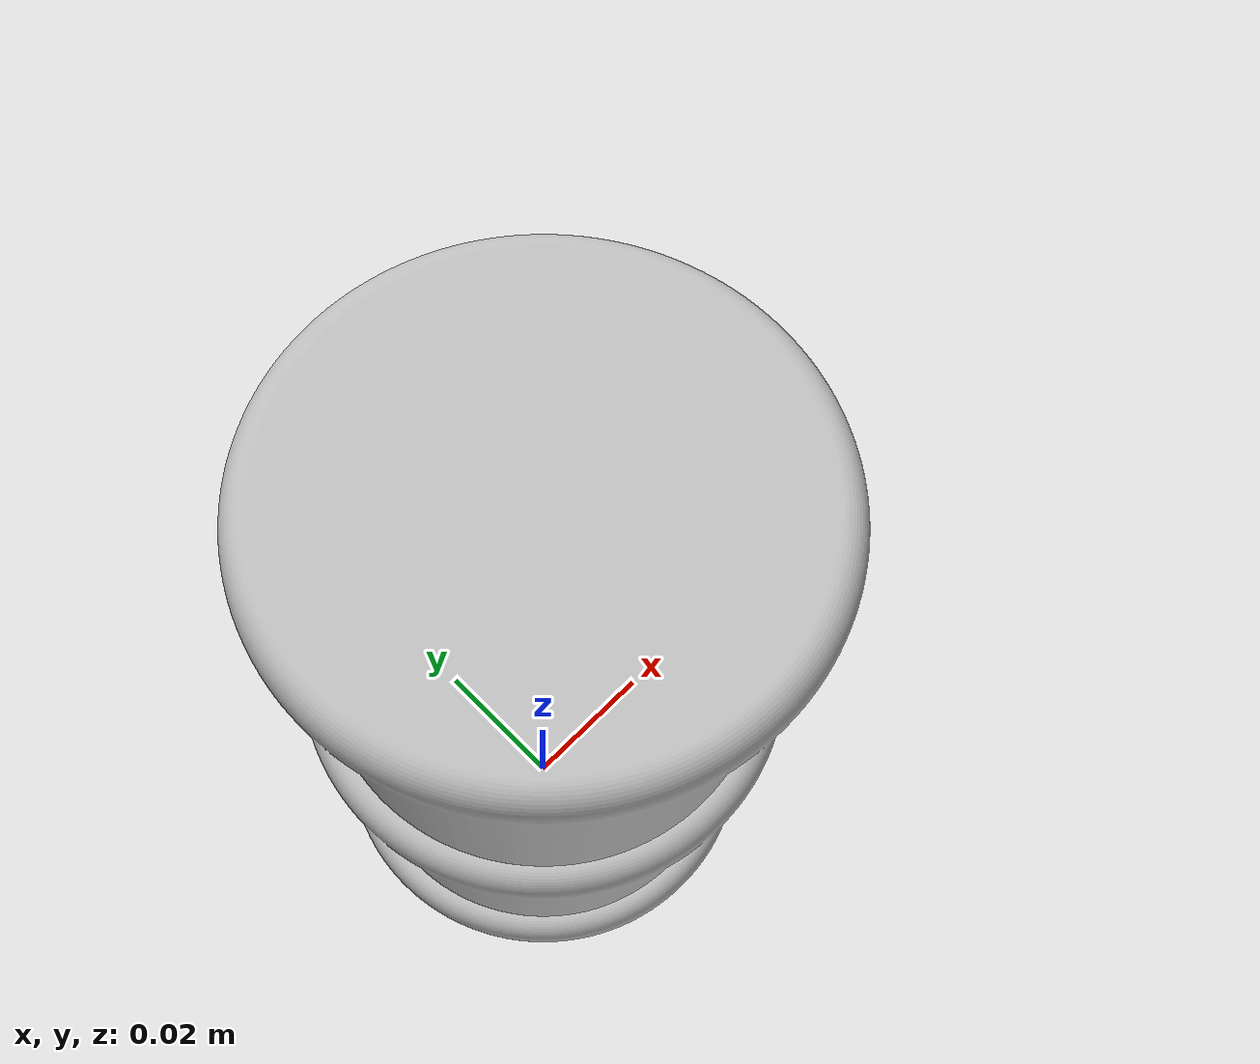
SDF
<?xml version="1.0"?>
<sdf version="1.5">
  <model name='barrel_green'>
    <static>false</static>
    <self_collide>false</self_collide>

    <link name='link'>

      <visual name='visual'>
        <geometry>
          <mesh>
            <uri>meshes/Barrel_Green.obj</uri>
            <scale>0.001 0.001 0.001</scale>
          </mesh>
        </geometry>

      </visual>

      <collision name='collision'>
        <geometry>
          <mesh>
            <uri>meshes/Barrel_Green_collision.obj</uri>
            <scale>0.001 0.001 0.001</scale>
          </mesh>
        </geometry>
      </collision>

      <pose>0.0 0.0 0.0 0.0 0.0 0.0</pose>

      <!--inertia
      as solid cylinder w=45g, D=50mm, h=80mm-->
      <inertial>
        <mass>0.045</mass>
        <inertia>
          <ixx>3.10e-5</ixx>
          <iyy>3.10e-5</iyy>
          <izz>1.41e-5</izz>
          <ixy>0.0</ixy>
          <ixz>0.0</ixz>
          <iyz>0.0</iyz>
        </inertia>
      </inertial>

      <enable_wind>false</enable_wind>

    </link>

  </model>
</sdf>
